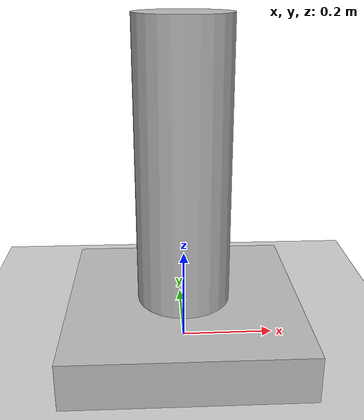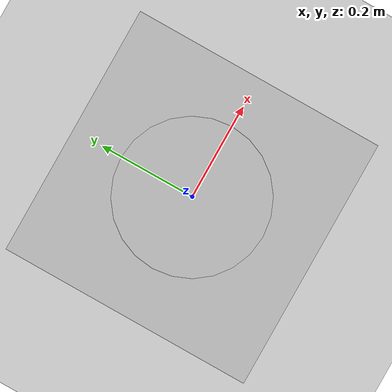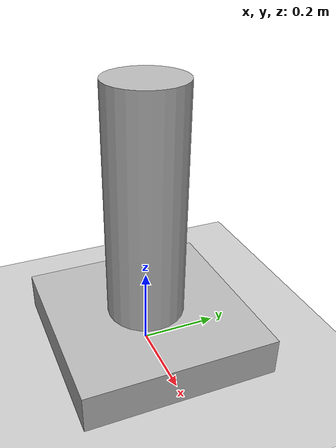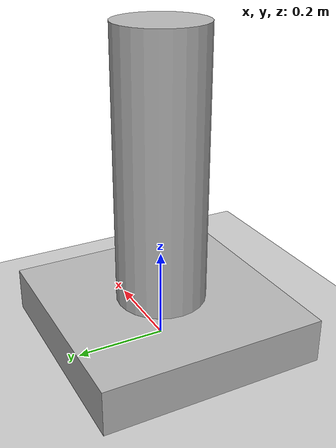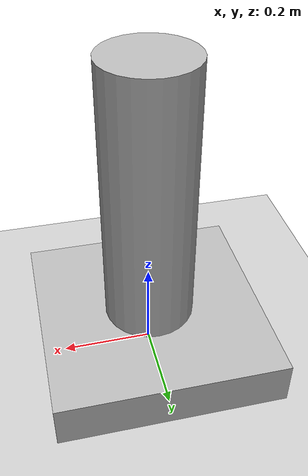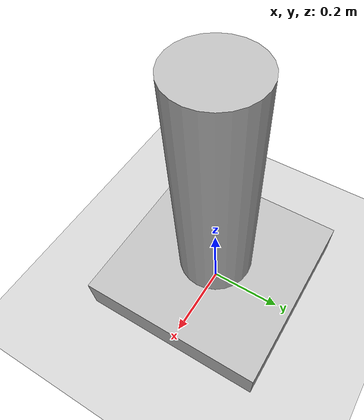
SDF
<sdf version="1.7">
 <world name="default">
  <light name="sun" type="directional">
   <pose>0 0 10 0 -0 0</pose>
   <diffuse>0.8 0.8 0.8 1</diffuse>
   <specular>0.2 0.2 0.2 1</specular>
   <attenuation>
    <range>1000</range>
    <constant>0.9</constant>
    <linear>0.01</linear>
    <quadratic>0.001</quadratic>
   </attenuation>
   <direction>-0.5 0.1 -0.9</direction>
   <spot><inner_angle>0</inner_angle><outer_angle>0</outer_angle><falloff>0</falloff></spot>
  </light>
  <model name="ground_plane">
   <static>1</static>
   <link name="link">
    <collision name="collision">
     <geometry><plane><normal>0 0 1</normal><size>100 100</size></plane></geometry>
     <surface><friction><ode><mu>100</mu><mu2>50</mu2></ode></friction></surface>
    </collision>
    <visual name="visual">
     <cast_shadows>0</cast_shadows>
     <geometry><plane><normal>0 0 1</normal><size>100 100</size></plane></geometry>
     <material>
      <script><uri>file://media/materials/scripts/gazebo.material</uri><name>Gazebo/Grey</name></script>
     </material>
    </visual>
   </link>
  </model>
  <gravity>0 0 -9.8</gravity>
  <magnetic_field>6e-06 2.3e-05 -4.2e-05</magnetic_field>
  <atmosphere type="adiabatic"/>
  <physics type="ode">
   <max_step_size>0.001</max_step_size>
   <real_time_factor>1</real_time_factor>
   <real_time_update_rate>1000</real_time_update_rate>
  </physics>
  <scene><ambient>0.4 0.4 0.4 1</ambient><background>0.7 0.7 0.7 1</background><shadows>1</shadows></scene>
  <audio><device>default</device></audio>
  <spherical_coordinates>
   <surface_model>EARTH_WGS84</surface_model>
   <latitude_deg>0</latitude_deg>
   <longitude_deg>0</longitude_deg>
   <elevation>0</elevation>
   <heading_deg>0</heading_deg>
  </spherical_coordinates>
  <model name="myfirst_robot">
   <link name="world_link">
    <inertial>
     <pose>0 0 0.05 0 -0 0</pose>
     <mass>10</mass>
     <inertia>
      <ixx>0.216667</ixx>
      <ixy>0</ixy>
      <ixz>0</ixz>
      <iyy>0.216667</iyy>
      <iyz>0</iyz>
      <izz>0.416667</izz>
     </inertia>
    </inertial>
    <collision name="world_link_fixed_joint_lump__base_link_collision">
     <pose>0 0 0.05 0 -0 0</pose>
     <geometry><box><size>0.5 0.5 0.1</size></box></geometry>
    </collision>
    <visual name="world_link_fixed_joint_lump__base_link_visual">
     <pose>0 0 0.05 0 -0 0</pose>
     <geometry><box><size>0.5 0.5 0.1</size></box></geometry>
    </visual>
   </link>
   <joint name="joint1" type="revolute">
    <pose relative_to="world_link">0 0 0.1 0 -0 0</pose>
    <parent>world_link</parent>
    <child>link1</child>
    <axis>
     <xyz>0 0 1</xyz>
     <limit><lower>-1e+16</lower><upper>1e+16</upper></limit>
     <dynamics><spring_reference>0</spring_reference><spring_stiffness>0</spring_stiffness></dynamics>
    </axis>
   </joint>
   <link name="link1">
    <pose relative_to="joint1">0 0 0 0 -0 0</pose>
    <inertial>
     <pose>0 0 0.3 0 -0 0</pose>
     <mass>10</mass>
     <inertia><ixx>0.325</ixx><ixy>0</ixy><ixz>0</ixz><iyy>0.325</iyy><iyz>0</iyz><izz>0.05</izz></inertia>
    </inertial>
    <collision name="link1_collision">
     <pose>0 0 0.3 0 -0 0</pose>
     <geometry><cylinder><length>0.6</length><radius>0.1</radius></cylinder></geometry>
    </collision>
    <visual name="link1_visual">
     <pose>0 0 0.3 0 -0 0</pose>
     <geometry><cylinder><length>0.6</length><radius>0.1</radius></cylinder></geometry>
    </visual>
   </link>
   <pose>-0.000945 -0 -5e-06 -1.9e-05 -0 -0</pose>
  </model>
 </world>
</sdf>
